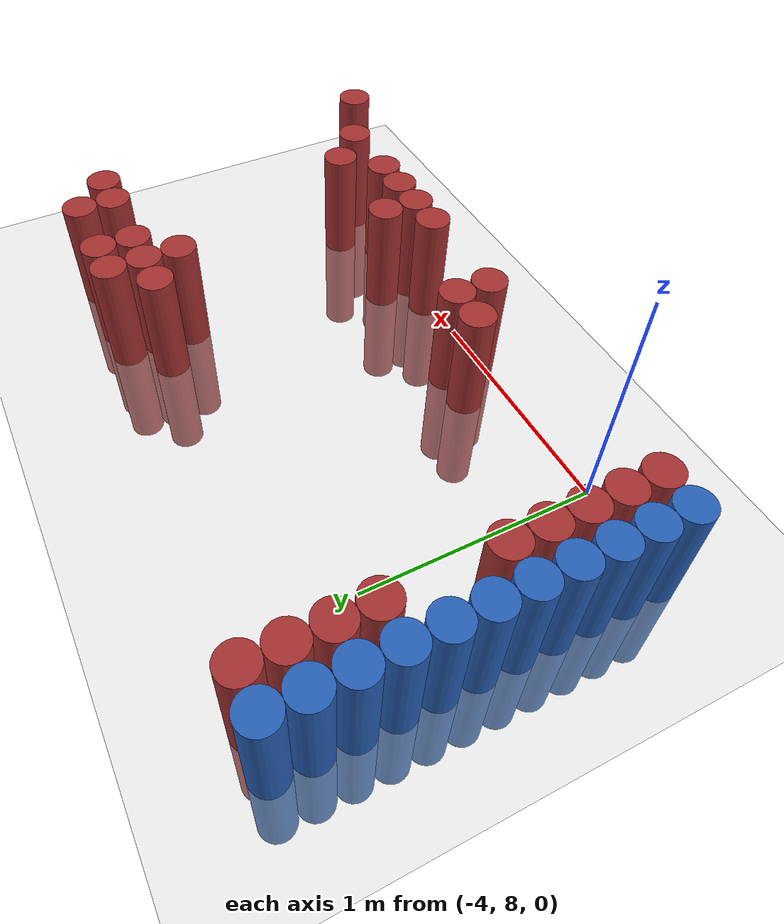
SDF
<sdf version="1.6">
 <world name="default">
  <model name="ground_plane">
   <static>1</static>
   <link name="link">
    <collision name="collision">
     <geometry><plane><normal>0 0 1</normal><size>100 100</size></plane></geometry>
     <surface><friction><ode><mu>100</mu><mu2>50</mu2></ode></friction></surface>
    </collision>
    <visual name="visual">
     <cast_shadows>0</cast_shadows>
     <geometry><plane><normal>0 0 1</normal><size>100 100</size></plane></geometry>
     <material>
      <script><uri>file://media/materials/scripts/gazebo.material</uri><name>Gazebo/Grey</name></script>
     </material>
    </visual>
   </link>
  </model>
  <model name="unit_cylinder_115">
   <static>1</static>
   <pose>-4.425000 8.025000 0.000000 0.000000 0.000000 0.000000</pose>
   <link name="link">
    <inertial>
     <mass>1</mass>
     <inertia><ixx>0.145833</ixx><ixy>0</ixy><ixz>0</ixz><iyy>0.145833</iyy><iyz>0</iyz><izz>0.125</izz></inertia>
    </inertial>
    <collision name="collision">
     <geometry><cylinder><radius>0.075000</radius><length>1</length></cylinder></geometry>
    </collision>
    <visual name="visual">
     <geometry><cylinder><radius>0.075000</radius><length>1</length></cylinder></geometry>
     <material>
      <ambient>0.152000 0.379000 0.720000 1</ambient>
      <diffuse>0.152000 0.379000 0.720000 1</diffuse>
     </material>
     <material>
      <script><name>Gazebo/Grey</name><uri>file://media/materials/scripts/gazebo.material</uri></script>
     </material>
    </visual>
    <sensor name="sensor_contact" type="contact"><contact><collision>collision</collision></contact></sensor>
   </link>
   <plugin filename="gz-sim-touchplugin-system" name="gz::sim::systems::TouchPlugin">
    <target>robot</target>
    <namespace>robot</namespace>
    <time>0.001</time>
    <enabled>true</enabled>
   </plugin>
  </model>
  <model name="unit_cylinder_116">
   <static>1</static>
   <pose>-4.425000 8.175000 0.000000 0.000000 0.000000 0.000000</pose>
   <link name="link">
    <inertial>
     <mass>1</mass>
     <inertia><ixx>0.145833</ixx><ixy>0</ixy><ixz>0</ixz><iyy>0.145833</iyy><iyz>0</iyz><izz>0.125</izz></inertia>
    </inertial>
    <collision name="collision">
     <geometry><cylinder><radius>0.075000</radius><length>1</length></cylinder></geometry>
    </collision>
    <visual name="visual">
     <geometry><cylinder><radius>0.075000</radius><length>1</length></cylinder></geometry>
     <material>
      <ambient>0.152000 0.379000 0.720000 1</ambient>
      <diffuse>0.152000 0.379000 0.720000 1</diffuse>
     </material>
     <material>
      <script><name>Gazebo/Grey</name><uri>file://media/materials/scripts/gazebo.material</uri></script>
     </material>
    </visual>
    <sensor name="sensor_contact" type="contact"><contact><collision>collision</collision></contact></sensor>
   </link>
   <plugin filename="gz-sim-touchplugin-system" name="gz::sim::systems::TouchPlugin">
    <target>robot</target>
    <namespace>robot</namespace>
    <time>0.001</time>
    <enabled>true</enabled>
   </plugin>
  </model>
  <model name="unit_cylinder_117">
   <static>1</static>
   <pose>-4.425000 8.325000 0.000000 0.000000 0.000000 0.000000</pose>
   <link name="link">
    <inertial>
     <mass>1</mass>
     <inertia><ixx>0.145833</ixx><ixy>0</ixy><ixz>0</ixz><iyy>0.145833</iyy><iyz>0</iyz><izz>0.125</izz></inertia>
    </inertial>
    <collision name="collision">
     <geometry><cylinder><radius>0.075000</radius><length>1</length></cylinder></geometry>
    </collision>
    <visual name="visual">
     <geometry><cylinder><radius>0.075000</radius><length>1</length></cylinder></geometry>
     <material>
      <ambient>0.152000 0.379000 0.720000 1</ambient>
      <diffuse>0.152000 0.379000 0.720000 1</diffuse>
     </material>
     <material>
      <script><name>Gazebo/Grey</name><uri>file://media/materials/scripts/gazebo.material</uri></script>
     </material>
    </visual>
    <sensor name="sensor_contact" type="contact"><contact><collision>collision</collision></contact></sensor>
   </link>
   <plugin filename="gz-sim-touchplugin-system" name="gz::sim::systems::TouchPlugin">
    <target>robot</target>
    <namespace>robot</namespace>
    <time>0.001</time>
    <enabled>true</enabled>
   </plugin>
  </model>
  <model name="unit_cylinder_118">
   <static>1</static>
   <pose>-4.425000 8.475000 0.000000 0.000000 0.000000 0.000000</pose>
   <link name="link">
    <inertial>
     <mass>1</mass>
     <inertia><ixx>0.145833</ixx><ixy>0</ixy><ixz>0</ixz><iyy>0.145833</iyy><iyz>0</iyz><izz>0.125</izz></inertia>
    </inertial>
    <collision name="collision">
     <geometry><cylinder><radius>0.075000</radius><length>1</length></cylinder></geometry>
    </collision>
    <visual name="visual">
     <geometry><cylinder><radius>0.075000</radius><length>1</length></cylinder></geometry>
     <material>
      <ambient>0.152000 0.379000 0.720000 1</ambient>
      <diffuse>0.152000 0.379000 0.720000 1</diffuse>
     </material>
     <material>
      <script><name>Gazebo/Grey</name><uri>file://media/materials/scripts/gazebo.material</uri></script>
     </material>
    </visual>
    <sensor name="sensor_contact" type="contact"><contact><collision>collision</collision></contact></sensor>
   </link>
   <plugin filename="gz-sim-touchplugin-system" name="gz::sim::systems::TouchPlugin">
    <target>robot</target>
    <namespace>robot</namespace>
    <time>0.001</time>
    <enabled>true</enabled>
   </plugin>
  </model>
  <model name="unit_cylinder_119">
   <static>1</static>
   <pose>-4.425000 8.625000 0.000000 0.000000 0.000000 0.000000</pose>
   <link name="link">
    <inertial>
     <mass>1</mass>
     <inertia><ixx>0.145833</ixx><ixy>0</ixy><ixz>0</ixz><iyy>0.145833</iyy><iyz>0</iyz><izz>0.125</izz></inertia>
    </inertial>
    <collision name="collision">
     <geometry><cylinder><radius>0.075000</radius><length>1</length></cylinder></geometry>
    </collision>
    <visual name="visual">
     <geometry><cylinder><radius>0.075000</radius><length>1</length></cylinder></geometry>
     <material>
      <ambient>0.152000 0.379000 0.720000 1</ambient>
      <diffuse>0.152000 0.379000 0.720000 1</diffuse>
     </material>
     <material>
      <script><name>Gazebo/Grey</name><uri>file://media/materials/scripts/gazebo.material</uri></script>
     </material>
    </visual>
    <sensor name="sensor_contact" type="contact"><contact><collision>collision</collision></contact></sensor>
   </link>
   <plugin filename="gz-sim-touchplugin-system" name="gz::sim::systems::TouchPlugin">
    <target>robot</target>
    <namespace>robot</namespace>
    <time>0.001</time>
    <enabled>true</enabled>
   </plugin>
  </model>
  <model name="unit_cylinder_120">
   <static>1</static>
   <pose>-4.425000 8.775000 0.000000 0.000000 0.000000 0.000000</pose>
   <link name="link">
    <inertial>
     <mass>1</mass>
     <inertia><ixx>0.145833</ixx><ixy>0</ixy><ixz>0</ixz><iyy>0.145833</iyy><iyz>0</iyz><izz>0.125</izz></inertia>
    </inertial>
    <collision name="collision">
     <geometry><cylinder><radius>0.075000</radius><length>1</length></cylinder></geometry>
    </collision>
    <visual name="visual">
     <geometry><cylinder><radius>0.075000</radius><length>1</length></cylinder></geometry>
     <material>
      <ambient>0.152000 0.379000 0.720000 1</ambient>
      <diffuse>0.152000 0.379000 0.720000 1</diffuse>
     </material>
     <material>
      <script><name>Gazebo/Grey</name><uri>file://media/materials/scripts/gazebo.material</uri></script>
     </material>
    </visual>
    <sensor name="sensor_contact" type="contact"><contact><collision>collision</collision></contact></sensor>
   </link>
   <plugin filename="gz-sim-touchplugin-system" name="gz::sim::systems::TouchPlugin">
    <target>robot</target>
    <namespace>robot</namespace>
    <time>0.001</time>
    <enabled>true</enabled>
   </plugin>
  </model>
  <model name="unit_cylinder_121">
   <static>1</static>
   <pose>-4.425000 8.925000 0.000000 0.000000 0.000000 0.000000</pose>
   <link name="link">
    <inertial>
     <mass>1</mass>
     <inertia><ixx>0.145833</ixx><ixy>0</ixy><ixz>0</ixz><iyy>0.145833</iyy><iyz>0</iyz><izz>0.125</izz></inertia>
    </inertial>
    <collision name="collision">
     <geometry><cylinder><radius>0.075000</radius><length>1</length></cylinder></geometry>
    </collision>
    <visual name="visual">
     <geometry><cylinder><radius>0.075000</radius><length>1</length></cylinder></geometry>
     <material>
      <ambient>0.152000 0.379000 0.720000 1</ambient>
      <diffuse>0.152000 0.379000 0.720000 1</diffuse>
     </material>
     <material>
      <script><name>Gazebo/Grey</name><uri>file://media/materials/scripts/gazebo.material</uri></script>
     </material>
    </visual>
    <sensor name="sensor_contact" type="contact"><contact><collision>collision</collision></contact></sensor>
   </link>
   <plugin filename="gz-sim-touchplugin-system" name="gz::sim::systems::TouchPlugin">
    <target>robot</target>
    <namespace>robot</namespace>
    <time>0.001</time>
    <enabled>true</enabled>
   </plugin>
  </model>
  <model name="unit_cylinder_122">
   <static>1</static>
   <pose>-4.425000 9.075000 0.000000 0.000000 0.000000 0.000000</pose>
   <link name="link">
    <inertial>
     <mass>1</mass>
     <inertia><ixx>0.145833</ixx><ixy>0</ixy><ixz>0</ixz><iyy>0.145833</iyy><iyz>0</iyz><izz>0.125</izz></inertia>
    </inertial>
    <collision name="collision">
     <geometry><cylinder><radius>0.075000</radius><length>1</length></cylinder></geometry>
    </collision>
    <visual name="visual">
     <geometry><cylinder><radius>0.075000</radius><length>1</length></cylinder></geometry>
     <material>
      <ambient>0.152000 0.379000 0.720000 1</ambient>
      <diffuse>0.152000 0.379000 0.720000 1</diffuse>
     </material>
     <material>
      <script><name>Gazebo/Grey</name><uri>file://media/materials/scripts/gazebo.material</uri></script>
     </material>
    </visual>
    <sensor name="sensor_contact" type="contact"><contact><collision>collision</collision></contact></sensor>
   </link>
   <plugin filename="gz-sim-touchplugin-system" name="gz::sim::systems::TouchPlugin">
    <target>robot</target>
    <namespace>robot</namespace>
    <time>0.001</time>
    <enabled>true</enabled>
   </plugin>
  </model>
  <model name="unit_cylinder_123">
   <static>1</static>
   <pose>-4.425000 9.225000 0.000000 0.000000 0.000000 0.000000</pose>
   <link name="link">
    <inertial>
     <mass>1</mass>
     <inertia><ixx>0.145833</ixx><ixy>0</ixy><ixz>0</ixz><iyy>0.145833</iyy><iyz>0</iyz><izz>0.125</izz></inertia>
    </inertial>
    <collision name="collision">
     <geometry><cylinder><radius>0.075000</radius><length>1</length></cylinder></geometry>
    </collision>
    <visual name="visual">
     <geometry><cylinder><radius>0.075000</radius><length>1</length></cylinder></geometry>
     <material>
      <ambient>0.152000 0.379000 0.720000 1</ambient>
      <diffuse>0.152000 0.379000 0.720000 1</diffuse>
     </material>
     <material>
      <script><name>Gazebo/Grey</name><uri>file://media/materials/scripts/gazebo.material</uri></script>
     </material>
    </visual>
    <sensor name="sensor_contact" type="contact"><contact><collision>collision</collision></contact></sensor>
   </link>
   <plugin filename="gz-sim-touchplugin-system" name="gz::sim::systems::TouchPlugin">
    <target>robot</target>
    <namespace>robot</namespace>
    <time>0.001</time>
    <enabled>true</enabled>
   </plugin>
  </model>
  <model name="unit_cylinder_124">
   <static>1</static>
   <pose>-4.425000 9.375000 0.000000 0.000000 0.000000 0.000000</pose>
   <link name="link">
    <inertial>
     <mass>1</mass>
     <inertia><ixx>0.145833</ixx><ixy>0</ixy><ixz>0</ixz><iyy>0.145833</iyy><iyz>0</iyz><izz>0.125</izz></inertia>
    </inertial>
    <collision name="collision">
     <geometry><cylinder><radius>0.075000</radius><length>1</length></cylinder></geometry>
    </collision>
    <visual name="visual">
     <geometry><cylinder><radius>0.075000</radius><length>1</length></cylinder></geometry>
     <material>
      <ambient>0.152000 0.379000 0.720000 1</ambient>
      <diffuse>0.152000 0.379000 0.720000 1</diffuse>
     </material>
     <material>
      <script><name>Gazebo/Grey</name><uri>file://media/materials/scripts/gazebo.material</uri></script>
     </material>
    </visual>
    <sensor name="sensor_contact" type="contact"><contact><collision>collision</collision></contact></sensor>
   </link>
   <plugin filename="gz-sim-touchplugin-system" name="gz::sim::systems::TouchPlugin">
    <target>robot</target>
    <namespace>robot</namespace>
    <time>0.001</time>
    <enabled>true</enabled>
   </plugin>
  </model>
  <model name="unit_cylinder_125">
   <static>1</static>
   <pose>-4.425000 9.525000 0.000000 0.000000 0.000000 0.000000</pose>
   <link name="link">
    <inertial>
     <mass>1</mass>
     <inertia><ixx>0.145833</ixx><ixy>0</ixy><ixz>0</ixz><iyy>0.145833</iyy><iyz>0</iyz><izz>0.125</izz></inertia>
    </inertial>
    <collision name="collision">
     <geometry><cylinder><radius>0.075000</radius><length>1</length></cylinder></geometry>
    </collision>
    <visual name="visual">
     <geometry><cylinder><radius>0.075000</radius><length>1</length></cylinder></geometry>
     <material>
      <ambient>0.152000 0.379000 0.720000 1</ambient>
      <diffuse>0.152000 0.379000 0.720000 1</diffuse>
     </material>
     <material>
      <script><name>Gazebo/Grey</name><uri>file://media/materials/scripts/gazebo.material</uri></script>
     </material>
    </visual>
    <sensor name="sensor_contact" type="contact"><contact><collision>collision</collision></contact></sensor>
   </link>
   <plugin filename="gz-sim-touchplugin-system" name="gz::sim::systems::TouchPlugin">
    <target>robot</target>
    <namespace>robot</namespace>
    <time>0.001</time>
    <enabled>true</enabled>
   </plugin>
  </model>
  <model name="unit_cylinder_133">
   <static>1</static>
   <pose>-4.275000 8.025000 0.000000 0.000000 0.000000 0.000000</pose>
   <link name="link">
    <inertial>
     <mass>1</mass>
     <inertia><ixx>0.145833</ixx><ixy>0</ixy><ixz>0</ixz><iyy>0.145833</iyy><iyz>0</iyz><izz>0.125</izz></inertia>
    </inertial>
    <collision name="collision">
     <geometry><cylinder><radius>0.075000</radius><length>1</length></cylinder></geometry>
    </collision>
    <visual name="visual">
     <geometry><cylinder><radius>0.075000</radius><length>1</length></cylinder></geometry>
     <material>
      <ambient>0.648000 0.192000 0.192000 1</ambient>
      <diffuse>0.648000 0.192000 0.192000 1</diffuse>
     </material>
     <material>
      <script><name>Gazebo/Grey</name><uri>file://media/materials/scripts/gazebo.material</uri></script>
     </material>
    </visual>
    <sensor name="sensor_contact" type="contact"><contact><collision>collision</collision></contact></sensor>
   </link>
   <plugin filename="gz-sim-touchplugin-system" name="gz::sim::systems::TouchPlugin">
    <target>robot</target>
    <namespace>robot</namespace>
    <time>0.001</time>
    <enabled>true</enabled>
   </plugin>
  </model>
  <model name="unit_cylinder_134">
   <static>1</static>
   <pose>-4.275000 8.175000 0.000000 0.000000 0.000000 0.000000</pose>
   <link name="link">
    <inertial>
     <mass>1</mass>
     <inertia><ixx>0.145833</ixx><ixy>0</ixy><ixz>0</ixz><iyy>0.145833</iyy><iyz>0</iyz><izz>0.125</izz></inertia>
    </inertial>
    <collision name="collision">
     <geometry><cylinder><radius>0.075000</radius><length>1</length></cylinder></geometry>
    </collision>
    <visual name="visual">
     <geometry><cylinder><radius>0.075000</radius><length>1</length></cylinder></geometry>
     <material>
      <ambient>0.648000 0.192000 0.192000 1</ambient>
      <diffuse>0.648000 0.192000 0.192000 1</diffuse>
     </material>
     <material>
      <script><name>Gazebo/Grey</name><uri>file://media/materials/scripts/gazebo.material</uri></script>
     </material>
    </visual>
    <sensor name="sensor_contact" type="contact"><contact><collision>collision</collision></contact></sensor>
   </link>
   <plugin filename="gz-sim-touchplugin-system" name="gz::sim::systems::TouchPlugin">
    <target>robot</target>
    <namespace>robot</namespace>
    <time>0.001</time>
    <enabled>true</enabled>
   </plugin>
  </model>
  <model name="unit_cylinder_135">
   <static>1</static>
   <pose>-4.275000 8.325000 0.000000 0.000000 0.000000 0.000000</pose>
   <link name="link">
    <inertial>
     <mass>1</mass>
     <inertia><ixx>0.145833</ixx><ixy>0</ixy><ixz>0</ixz><iyy>0.145833</iyy><iyz>0</iyz><izz>0.125</izz></inertia>
    </inertial>
    <collision name="collision">
     <geometry><cylinder><radius>0.075000</radius><length>1</length></cylinder></geometry>
    </collision>
    <visual name="visual">
     <geometry><cylinder><radius>0.075000</radius><length>1</length></cylinder></geometry>
     <material>
      <ambient>0.648000 0.192000 0.192000 1</ambient>
      <diffuse>0.648000 0.192000 0.192000 1</diffuse>
     </material>
     <material>
      <script><name>Gazebo/Grey</name><uri>file://media/materials/scripts/gazebo.material</uri></script>
     </material>
    </visual>
    <sensor name="sensor_contact" type="contact"><contact><collision>collision</collision></contact></sensor>
   </link>
   <plugin filename="gz-sim-touchplugin-system" name="gz::sim::systems::TouchPlugin">
    <target>robot</target>
    <namespace>robot</namespace>
    <time>0.001</time>
    <enabled>true</enabled>
   </plugin>
  </model>
  <model name="unit_cylinder_136">
   <static>1</static>
   <pose>-4.275000 8.475000 0.000000 0.000000 0.000000 0.000000</pose>
   <link name="link">
    <inertial>
     <mass>1</mass>
     <inertia><ixx>0.145833</ixx><ixy>0</ixy><ixz>0</ixz><iyy>0.145833</iyy><iyz>0</iyz><izz>0.125</izz></inertia>
    </inertial>
    <collision name="collision">
     <geometry><cylinder><radius>0.075000</radius><length>1</length></cylinder></geometry>
    </collision>
    <visual name="visual">
     <geometry><cylinder><radius>0.075000</radius><length>1</length></cylinder></geometry>
     <material>
      <ambient>0.648000 0.192000 0.192000 1</ambient>
      <diffuse>0.648000 0.192000 0.192000 1</diffuse>
     </material>
     <material>
      <script><name>Gazebo/Grey</name><uri>file://media/materials/scripts/gazebo.material</uri></script>
     </material>
    </visual>
    <sensor name="sensor_contact" type="contact"><contact><collision>collision</collision></contact></sensor>
   </link>
   <plugin filename="gz-sim-touchplugin-system" name="gz::sim::systems::TouchPlugin">
    <target>robot</target>
    <namespace>robot</namespace>
    <time>0.001</time>
    <enabled>true</enabled>
   </plugin>
  </model>
  <model name="unit_cylinder_137">
   <static>1</static>
   <pose>-4.275000 8.625000 0.000000 0.000000 0.000000 0.000000</pose>
   <link name="link">
    <inertial>
     <mass>1</mass>
     <inertia><ixx>0.145833</ixx><ixy>0</ixy><ixz>0</ixz><iyy>0.145833</iyy><iyz>0</iyz><izz>0.125</izz></inertia>
    </inertial>
    <collision name="collision">
     <geometry><cylinder><radius>0.075000</radius><length>1</length></cylinder></geometry>
    </collision>
    <visual name="visual">
     <geometry><cylinder><radius>0.075000</radius><length>1</length></cylinder></geometry>
     <material>
      <ambient>0.648000 0.192000 0.192000 1</ambient>
      <diffuse>0.648000 0.192000 0.192000 1</diffuse>
     </material>
     <material>
      <script><name>Gazebo/Grey</name><uri>file://media/materials/scripts/gazebo.material</uri></script>
     </material>
    </visual>
    <sensor name="sensor_contact" type="contact"><contact><collision>collision</collision></contact></sensor>
   </link>
   <plugin filename="gz-sim-touchplugin-system" name="gz::sim::systems::TouchPlugin">
    <target>robot</target>
    <namespace>robot</namespace>
    <time>0.001</time>
    <enabled>true</enabled>
   </plugin>
  </model>
  <model name="unit_cylinder_138">
   <static>1</static>
   <pose>-4.275000 9.075000 0.000000 0.000000 0.000000 0.000000</pose>
   <link name="link">
    <inertial>
     <mass>1</mass>
     <inertia><ixx>0.145833</ixx><ixy>0</ixy><ixz>0</ixz><iyy>0.145833</iyy><iyz>0</iyz><izz>0.125</izz></inertia>
    </inertial>
    <collision name="collision">
     <geometry><cylinder><radius>0.075000</radius><length>1</length></cylinder></geometry>
    </collision>
    <visual name="visual">
     <geometry><cylinder><radius>0.075000</radius><length>1</length></cylinder></geometry>
     <material>
      <ambient>0.648000 0.192000 0.192000 1</ambient>
      <diffuse>0.648000 0.192000 0.192000 1</diffuse>
     </material>
     <material>
      <script><name>Gazebo/Grey</name><uri>file://media/materials/scripts/gazebo.material</uri></script>
     </material>
    </visual>
    <sensor name="sensor_contact" type="contact"><contact><collision>collision</collision></contact></sensor>
   </link>
   <plugin filename="gz-sim-touchplugin-system" name="gz::sim::systems::TouchPlugin">
    <target>robot</target>
    <namespace>robot</namespace>
    <time>0.001</time>
    <enabled>true</enabled>
   </plugin>
  </model>
  <model name="unit_cylinder_139">
   <static>1</static>
   <pose>-4.275000 9.225000 0.000000 0.000000 0.000000 0.000000</pose>
   <link name="link">
    <inertial>
     <mass>1</mass>
     <inertia><ixx>0.145833</ixx><ixy>0</ixy><ixz>0</ixz><iyy>0.145833</iyy><iyz>0</iyz><izz>0.125</izz></inertia>
    </inertial>
    <collision name="collision">
     <geometry><cylinder><radius>0.075000</radius><length>1</length></cylinder></geometry>
    </collision>
    <visual name="visual">
     <geometry><cylinder><radius>0.075000</radius><length>1</length></cylinder></geometry>
     <material>
      <ambient>0.648000 0.192000 0.192000 1</ambient>
      <diffuse>0.648000 0.192000 0.192000 1</diffuse>
     </material>
     <material>
      <script><name>Gazebo/Grey</name><uri>file://media/materials/scripts/gazebo.material</uri></script>
     </material>
    </visual>
    <sensor name="sensor_contact" type="contact"><contact><collision>collision</collision></contact></sensor>
   </link>
   <plugin filename="gz-sim-touchplugin-system" name="gz::sim::systems::TouchPlugin">
    <target>robot</target>
    <namespace>robot</namespace>
    <time>0.001</time>
    <enabled>true</enabled>
   </plugin>
  </model>
  <model name="unit_cylinder_140">
   <static>1</static>
   <pose>-4.275000 9.375000 0.000000 0.000000 0.000000 0.000000</pose>
   <link name="link">
    <inertial>
     <mass>1</mass>
     <inertia><ixx>0.145833</ixx><ixy>0</ixy><ixz>0</ixz><iyy>0.145833</iyy><iyz>0</iyz><izz>0.125</izz></inertia>
    </inertial>
    <collision name="collision">
     <geometry><cylinder><radius>0.075000</radius><length>1</length></cylinder></geometry>
    </collision>
    <visual name="visual">
     <geometry><cylinder><radius>0.075000</radius><length>1</length></cylinder></geometry>
     <material>
      <ambient>0.648000 0.192000 0.192000 1</ambient>
      <diffuse>0.648000 0.192000 0.192000 1</diffuse>
     </material>
     <material>
      <script><name>Gazebo/Grey</name><uri>file://media/materials/scripts/gazebo.material</uri></script>
     </material>
    </visual>
    <sensor name="sensor_contact" type="contact"><contact><collision>collision</collision></contact></sensor>
   </link>
   <plugin filename="gz-sim-touchplugin-system" name="gz::sim::systems::TouchPlugin">
    <target>robot</target>
    <namespace>robot</namespace>
    <time>0.001</time>
    <enabled>true</enabled>
   </plugin>
  </model>
  <model name="unit_cylinder_141">
   <static>1</static>
   <pose>-4.275000 9.525000 0.000000 0.000000 0.000000 0.000000</pose>
   <link name="link">
    <inertial>
     <mass>1</mass>
     <inertia><ixx>0.145833</ixx><ixy>0</ixy><ixz>0</ixz><iyy>0.145833</iyy><iyz>0</iyz><izz>0.125</izz></inertia>
    </inertial>
    <collision name="collision">
     <geometry><cylinder><radius>0.075000</radius><length>1</length></cylinder></geometry>
    </collision>
    <visual name="visual">
     <geometry><cylinder><radius>0.075000</radius><length>1</length></cylinder></geometry>
     <material>
      <ambient>0.648000 0.192000 0.192000 1</ambient>
      <diffuse>0.648000 0.192000 0.192000 1</diffuse>
     </material>
     <material>
      <script><name>Gazebo/Grey</name><uri>file://media/materials/scripts/gazebo.material</uri></script>
     </material>
    </visual>
    <sensor name="sensor_contact" type="contact"><contact><collision>collision</collision></contact></sensor>
   </link>
   <plugin filename="gz-sim-touchplugin-system" name="gz::sim::systems::TouchPlugin">
    <target>robot</target>
    <namespace>robot</namespace>
    <time>0.001</time>
    <enabled>true</enabled>
   </plugin>
  </model>
  <model name="unit_cylinder_159">
   <static>1</static>
   <pose>-3.375000 8.175000 0.000000 0.000000 0.000000 0.000000</pose>
   <link name="link">
    <inertial>
     <mass>1</mass>
     <inertia><ixx>0.145833</ixx><ixy>0</ixy><ixz>0</ixz><iyy>0.145833</iyy><iyz>0</iyz><izz>0.125</izz></inertia>
    </inertial>
    <collision name="collision">
     <geometry><cylinder><radius>0.075000</radius><length>1</length></cylinder></geometry>
    </collision>
    <visual name="visual">
     <geometry><cylinder><radius>0.075000</radius><length>1</length></cylinder></geometry>
     <material>
      <ambient>0.648000 0.192000 0.192000 1</ambient>
      <diffuse>0.648000 0.192000 0.192000 1</diffuse>
     </material>
     <material>
      <script><name>Gazebo/Grey</name><uri>file://media/materials/scripts/gazebo.material</uri></script>
     </material>
    </visual>
    <sensor name="sensor_contact" type="contact"><contact><collision>collision</collision></contact></sensor>
   </link>
   <plugin filename="gz-sim-touchplugin-system" name="gz::sim::systems::TouchPlugin">
    <target>robot</target>
    <namespace>robot</namespace>
    <time>0.001</time>
    <enabled>true</enabled>
   </plugin>
  </model>
  <model name="unit_cylinder_160">
   <static>1</static>
   <pose>-3.225000 8.025000 0.000000 0.000000 0.000000 0.000000</pose>
   <link name="link">
    <inertial>
     <mass>1</mass>
     <inertia><ixx>0.145833</ixx><ixy>0</ixy><ixz>0</ixz><iyy>0.145833</iyy><iyz>0</iyz><izz>0.125</izz></inertia>
    </inertial>
    <collision name="collision">
     <geometry><cylinder><radius>0.075000</radius><length>1</length></cylinder></geometry>
    </collision>
    <visual name="visual">
     <geometry><cylinder><radius>0.075000</radius><length>1</length></cylinder></geometry>
     <material>
      <ambient>0.648000 0.192000 0.192000 1</ambient>
      <diffuse>0.648000 0.192000 0.192000 1</diffuse>
     </material>
     <material>
      <script><name>Gazebo/Grey</name><uri>file://media/materials/scripts/gazebo.material</uri></script>
     </material>
    </visual>
    <sensor name="sensor_contact" type="contact"><contact><collision>collision</collision></contact></sensor>
   </link>
   <plugin filename="gz-sim-touchplugin-system" name="gz::sim::systems::TouchPlugin">
    <target>robot</target>
    <namespace>robot</namespace>
    <time>0.001</time>
    <enabled>true</enabled>
   </plugin>
  </model>
  <model name="unit_cylinder_161">
   <static>1</static>
   <pose>-3.225000 8.175000 0.000000 0.000000 0.000000 0.000000</pose>
   <link name="link">
    <inertial>
     <mass>1</mass>
     <inertia><ixx>0.145833</ixx><ixy>0</ixy><ixz>0</ixz><iyy>0.145833</iyy><iyz>0</iyz><izz>0.125</izz></inertia>
    </inertial>
    <collision name="collision">
     <geometry><cylinder><radius>0.075000</radius><length>1</length></cylinder></geometry>
    </collision>
    <visual name="visual">
     <geometry><cylinder><radius>0.075000</radius><length>1</length></cylinder></geometry>
     <material>
      <ambient>0.648000 0.192000 0.192000 1</ambient>
      <diffuse>0.648000 0.192000 0.192000 1</diffuse>
     </material>
     <material>
      <script><name>Gazebo/Grey</name><uri>file://media/materials/scripts/gazebo.material</uri></script>
     </material>
    </visual>
    <sensor name="sensor_contact" type="contact"><contact><collision>collision</collision></contact></sensor>
   </link>
   <plugin filename="gz-sim-touchplugin-system" name="gz::sim::systems::TouchPlugin">
    <target>robot</target>
    <namespace>robot</namespace>
    <time>0.001</time>
    <enabled>true</enabled>
   </plugin>
  </model>
  <model name="unit_cylinder_164">
   <static>1</static>
   <pose>-2.775000 8.025000 0.000000 0.000000 0.000000 0.000000</pose>
   <link name="link">
    <inertial>
     <mass>1</mass>
     <inertia><ixx>0.145833</ixx><ixy>0</ixy><ixz>0</ixz><iyy>0.145833</iyy><iyz>0</iyz><izz>0.125</izz></inertia>
    </inertial>
    <collision name="collision">
     <geometry><cylinder><radius>0.075000</radius><length>1</length></cylinder></geometry>
    </collision>
    <visual name="visual">
     <geometry><cylinder><radius>0.075000</radius><length>1</length></cylinder></geometry>
     <material>
      <ambient>0.648000 0.192000 0.192000 1</ambient>
      <diffuse>0.648000 0.192000 0.192000 1</diffuse>
     </material>
     <material>
      <script><name>Gazebo/Grey</name><uri>file://media/materials/scripts/gazebo.material</uri></script>
     </material>
    </visual>
    <sensor name="sensor_contact" type="contact"><contact><collision>collision</collision></contact></sensor>
   </link>
   <plugin filename="gz-sim-touchplugin-system" name="gz::sim::systems::TouchPlugin">
    <target>robot</target>
    <namespace>robot</namespace>
    <time>0.001</time>
    <enabled>true</enabled>
   </plugin>
  </model>
  <model name="unit_cylinder_166">
   <static>1</static>
   <pose>-2.625000 8.025000 0.000000 0.000000 0.000000 0.000000</pose>
   <link name="link">
    <inertial>
     <mass>1</mass>
     <inertia><ixx>0.145833</ixx><ixy>0</ixy><ixz>0</ixz><iyy>0.145833</iyy><iyz>0</iyz><izz>0.125</izz></inertia>
    </inertial>
    <collision name="collision">
     <geometry><cylinder><radius>0.075000</radius><length>1</length></cylinder></geometry>
    </collision>
    <visual name="visual">
     <geometry><cylinder><radius>0.075000</radius><length>1</length></cylinder></geometry>
     <material>
      <ambient>0.648000 0.192000 0.192000 1</ambient>
      <diffuse>0.648000 0.192000 0.192000 1</diffuse>
     </material>
     <material>
      <script><name>Gazebo/Grey</name><uri>file://media/materials/scripts/gazebo.material</uri></script>
     </material>
    </visual>
    <sensor name="sensor_contact" type="contact"><contact><collision>collision</collision></contact></sensor>
   </link>
   <plugin filename="gz-sim-touchplugin-system" name="gz::sim::systems::TouchPlugin">
    <target>robot</target>
    <namespace>robot</namespace>
    <time>0.001</time>
    <enabled>true</enabled>
   </plugin>
  </model>
  <model name="unit_cylinder_167">
   <static>1</static>
   <pose>-2.625000 8.175000 0.000000 0.000000 0.000000 0.000000</pose>
   <link name="link">
    <inertial>
     <mass>1</mass>
     <inertia><ixx>0.145833</ixx><ixy>0</ixy><ixz>0</ixz><iyy>0.145833</iyy><iyz>0</iyz><izz>0.125</izz></inertia>
    </inertial>
    <collision name="collision">
     <geometry><cylinder><radius>0.075000</radius><length>1</length></cylinder></geometry>
    </collision>
    <visual name="visual">
     <geometry><cylinder><radius>0.075000</radius><length>1</length></cylinder></geometry>
     <material>
      <ambient>0.648000 0.192000 0.192000 1</ambient>
      <diffuse>0.648000 0.192000 0.192000 1</diffuse>
     </material>
     <material>
      <script><name>Gazebo/Grey</name><uri>file://media/materials/scripts/gazebo.material</uri></script>
     </material>
    </visual>
    <sensor name="sensor_contact" type="contact"><contact><collision>collision</collision></contact></sensor>
   </link>
   <plugin filename="gz-sim-touchplugin-system" name="gz::sim::systems::TouchPlugin">
    <target>robot</target>
    <namespace>robot</namespace>
    <time>0.001</time>
    <enabled>true</enabled>
   </plugin>
  </model>
  <model name="unit_cylinder_168">
   <static>1</static>
   <pose>-2.625000 9.225000 0.000000 0.000000 0.000000 0.000000</pose>
   <link name="link">
    <inertial>
     <mass>1</mass>
     <inertia><ixx>0.145833</ixx><ixy>0</ixy><ixz>0</ixz><iyy>0.145833</iyy><iyz>0</iyz><izz>0.125</izz></inertia>
    </inertial>
    <collision name="collision">
     <geometry><cylinder><radius>0.075000</radius><length>1</length></cylinder></geometry>
    </collision>
    <visual name="visual">
     <geometry><cylinder><radius>0.075000</radius><length>1</length></cylinder></geometry>
     <material>
      <ambient>0.648000 0.192000 0.192000 1</ambient>
      <diffuse>0.648000 0.192000 0.192000 1</diffuse>
     </material>
     <material>
      <script><name>Gazebo/Grey</name><uri>file://media/materials/scripts/gazebo.material</uri></script>
     </material>
    </visual>
    <sensor name="sensor_contact" type="contact"><contact><collision>collision</collision></contact></sensor>
   </link>
   <plugin filename="gz-sim-touchplugin-system" name="gz::sim::systems::TouchPlugin">
    <target>robot</target>
    <namespace>robot</namespace>
    <time>0.001</time>
    <enabled>true</enabled>
   </plugin>
  </model>
  <model name="unit_cylinder_171">
   <static>1</static>
   <pose>-2.475000 8.025000 0.000000 0.000000 0.000000 0.000000</pose>
   <link name="link">
    <inertial>
     <mass>1</mass>
     <inertia><ixx>0.145833</ixx><ixy>0</ixy><ixz>0</ixz><iyy>0.145833</iyy><iyz>0</iyz><izz>0.125</izz></inertia>
    </inertial>
    <collision name="collision">
     <geometry><cylinder><radius>0.075000</radius><length>1</length></cylinder></geometry>
    </collision>
    <visual name="visual">
     <geometry><cylinder><radius>0.075000</radius><length>1</length></cylinder></geometry>
     <material>
      <ambient>0.648000 0.192000 0.192000 1</ambient>
      <diffuse>0.648000 0.192000 0.192000 1</diffuse>
     </material>
     <material>
      <script><name>Gazebo/Grey</name><uri>file://media/materials/scripts/gazebo.material</uri></script>
     </material>
    </visual>
    <sensor name="sensor_contact" type="contact"><contact><collision>collision</collision></contact></sensor>
   </link>
   <plugin filename="gz-sim-touchplugin-system" name="gz::sim::systems::TouchPlugin">
    <target>robot</target>
    <namespace>robot</namespace>
    <time>0.001</time>
    <enabled>true</enabled>
   </plugin>
  </model>
  <model name="unit_cylinder_172">
   <static>1</static>
   <pose>-2.475000 9.075000 0.000000 0.000000 0.000000 0.000000</pose>
   <link name="link">
    <inertial>
     <mass>1</mass>
     <inertia><ixx>0.145833</ixx><ixy>0</ixy><ixz>0</ixz><iyy>0.145833</iyy><iyz>0</iyz><izz>0.125</izz></inertia>
    </inertial>
    <collision name="collision">
     <geometry><cylinder><radius>0.075000</radius><length>1</length></cylinder></geometry>
    </collision>
    <visual name="visual">
     <geometry><cylinder><radius>0.075000</radius><length>1</length></cylinder></geometry>
     <material>
      <ambient>0.648000 0.192000 0.192000 1</ambient>
      <diffuse>0.648000 0.192000 0.192000 1</diffuse>
     </material>
     <material>
      <script><name>Gazebo/Grey</name><uri>file://media/materials/scripts/gazebo.material</uri></script>
     </material>
    </visual>
    <sensor name="sensor_contact" type="contact"><contact><collision>collision</collision></contact></sensor>
   </link>
   <plugin filename="gz-sim-touchplugin-system" name="gz::sim::systems::TouchPlugin">
    <target>robot</target>
    <namespace>robot</namespace>
    <time>0.001</time>
    <enabled>true</enabled>
   </plugin>
  </model>
  <model name="unit_cylinder_173">
   <static>1</static>
   <pose>-2.475000 9.225000 0.000000 0.000000 0.000000 0.000000</pose>
   <link name="link">
    <inertial>
     <mass>1</mass>
     <inertia><ixx>0.145833</ixx><ixy>0</ixy><ixz>0</ixz><iyy>0.145833</iyy><iyz>0</iyz><izz>0.125</izz></inertia>
    </inertial>
    <collision name="collision">
     <geometry><cylinder><radius>0.075000</radius><length>1</length></cylinder></geometry>
    </collision>
    <visual name="visual">
     <geometry><cylinder><radius>0.075000</radius><length>1</length></cylinder></geometry>
     <material>
      <ambient>0.648000 0.192000 0.192000 1</ambient>
      <diffuse>0.648000 0.192000 0.192000 1</diffuse>
     </material>
     <material>
      <script><name>Gazebo/Grey</name><uri>file://media/materials/scripts/gazebo.material</uri></script>
     </material>
    </visual>
    <sensor name="sensor_contact" type="contact"><contact><collision>collision</collision></contact></sensor>
   </link>
   <plugin filename="gz-sim-touchplugin-system" name="gz::sim::systems::TouchPlugin">
    <target>robot</target>
    <namespace>robot</namespace>
    <time>0.001</time>
    <enabled>true</enabled>
   </plugin>
  </model>
  <model name="unit_cylinder_174">
   <static>1</static>
   <pose>-2.475000 9.375000 0.000000 0.000000 0.000000 0.000000</pose>
   <link name="link">
    <inertial>
     <mass>1</mass>
     <inertia><ixx>0.145833</ixx><ixy>0</ixy><ixz>0</ixz><iyy>0.145833</iyy><iyz>0</iyz><izz>0.125</izz></inertia>
    </inertial>
    <collision name="collision">
     <geometry><cylinder><radius>0.075000</radius><length>1</length></cylinder></geometry>
    </collision>
    <visual name="visual">
     <geometry><cylinder><radius>0.075000</radius><length>1</length></cylinder></geometry>
     <material>
      <ambient>0.648000 0.192000 0.192000 1</ambient>
      <diffuse>0.648000 0.192000 0.192000 1</diffuse>
     </material>
     <material>
      <script><name>Gazebo/Grey</name><uri>file://media/materials/scripts/gazebo.material</uri></script>
     </material>
    </visual>
    <sensor name="sensor_contact" type="contact"><contact><collision>collision</collision></contact></sensor>
   </link>
   <plugin filename="gz-sim-touchplugin-system" name="gz::sim::systems::TouchPlugin">
    <target>robot</target>
    <namespace>robot</namespace>
    <time>0.001</time>
    <enabled>true</enabled>
   </plugin>
  </model>
  <model name="unit_cylinder_180">
   <static>1</static>
   <pose>-2.325000 8.025000 0.000000 0.000000 0.000000 0.000000</pose>
   <link name="link">
    <inertial>
     <mass>1</mass>
     <inertia><ixx>0.145833</ixx><ixy>0</ixy><ixz>0</ixz><iyy>0.145833</iyy><iyz>0</iyz><izz>0.125</izz></inertia>
    </inertial>
    <collision name="collision">
     <geometry><cylinder><radius>0.075000</radius><length>1</length></cylinder></geometry>
    </collision>
    <visual name="visual">
     <geometry><cylinder><radius>0.075000</radius><length>1</length></cylinder></geometry>
     <material>
      <ambient>0.648000 0.192000 0.192000 1</ambient>
      <diffuse>0.648000 0.192000 0.192000 1</diffuse>
     </material>
     <material>
      <script><name>Gazebo/Grey</name><uri>file://media/materials/scripts/gazebo.material</uri></script>
     </material>
    </visual>
    <sensor name="sensor_contact" type="contact"><contact><collision>collision</collision></contact></sensor>
   </link>
   <plugin filename="gz-sim-touchplugin-system" name="gz::sim::systems::TouchPlugin">
    <target>robot</target>
    <namespace>robot</namespace>
    <time>0.001</time>
    <enabled>true</enabled>
   </plugin>
  </model>
  <model name="unit_cylinder_181">
   <static>1</static>
   <pose>-2.325000 9.225000 0.000000 0.000000 0.000000 0.000000</pose>
   <link name="link">
    <inertial>
     <mass>1</mass>
     <inertia><ixx>0.145833</ixx><ixy>0</ixy><ixz>0</ixz><iyy>0.145833</iyy><iyz>0</iyz><izz>0.125</izz></inertia>
    </inertial>
    <collision name="collision">
     <geometry><cylinder><radius>0.075000</radius><length>1</length></cylinder></geometry>
    </collision>
    <visual name="visual">
     <geometry><cylinder><radius>0.075000</radius><length>1</length></cylinder></geometry>
     <material>
      <ambient>0.648000 0.192000 0.192000 1</ambient>
      <diffuse>0.648000 0.192000 0.192000 1</diffuse>
     </material>
     <material>
      <script><name>Gazebo/Grey</name><uri>file://media/materials/scripts/gazebo.material</uri></script>
     </material>
    </visual>
    <sensor name="sensor_contact" type="contact"><contact><collision>collision</collision></contact></sensor>
   </link>
   <plugin filename="gz-sim-touchplugin-system" name="gz::sim::systems::TouchPlugin">
    <target>robot</target>
    <namespace>robot</namespace>
    <time>0.001</time>
    <enabled>true</enabled>
   </plugin>
  </model>
  <model name="unit_cylinder_182">
   <static>1</static>
   <pose>-2.325000 9.375000 0.000000 0.000000 0.000000 0.000000</pose>
   <link name="link">
    <inertial>
     <mass>1</mass>
     <inertia><ixx>0.145833</ixx><ixy>0</ixy><ixz>0</ixz><iyy>0.145833</iyy><iyz>0</iyz><izz>0.125</izz></inertia>
    </inertial>
    <collision name="collision">
     <geometry><cylinder><radius>0.075000</radius><length>1</length></cylinder></geometry>
    </collision>
    <visual name="visual">
     <geometry><cylinder><radius>0.075000</radius><length>1</length></cylinder></geometry>
     <material>
      <ambient>0.648000 0.192000 0.192000 1</ambient>
      <diffuse>0.648000 0.192000 0.192000 1</diffuse>
     </material>
     <material>
      <script><name>Gazebo/Grey</name><uri>file://media/materials/scripts/gazebo.material</uri></script>
     </material>
    </visual>
    <sensor name="sensor_contact" type="contact"><contact><collision>collision</collision></contact></sensor>
   </link>
   <plugin filename="gz-sim-touchplugin-system" name="gz::sim::systems::TouchPlugin">
    <target>robot</target>
    <namespace>robot</namespace>
    <time>0.001</time>
    <enabled>true</enabled>
   </plugin>
  </model>
  <model name="unit_cylinder_192">
   <static>1</static>
   <pose>-2.175000 8.175000 0.000000 0.000000 0.000000 0.000000</pose>
   <link name="link">
    <inertial>
     <mass>1</mass>
     <inertia><ixx>0.145833</ixx><ixy>0</ixy><ixz>0</ixz><iyy>0.145833</iyy><iyz>0</iyz><izz>0.125</izz></inertia>
    </inertial>
    <collision name="collision">
     <geometry><cylinder><radius>0.075000</radius><length>1</length></cylinder></geometry>
    </collision>
    <visual name="visual">
     <geometry><cylinder><radius>0.075000</radius><length>1</length></cylinder></geometry>
     <material>
      <ambient>0.648000 0.192000 0.192000 1</ambient>
      <diffuse>0.648000 0.192000 0.192000 1</diffuse>
     </material>
     <material>
      <script><name>Gazebo/Grey</name><uri>file://media/materials/scripts/gazebo.material</uri></script>
     </material>
    </visual>
    <sensor name="sensor_contact" type="contact"><contact><collision>collision</collision></contact></sensor>
   </link>
   <plugin filename="gz-sim-touchplugin-system" name="gz::sim::systems::TouchPlugin">
    <target>robot</target>
    <namespace>robot</namespace>
    <time>0.001</time>
    <enabled>true</enabled>
   </plugin>
  </model>
  <model name="unit_cylinder_197">
   <static>1</static>
   <pose>-2.025000 8.025000 0.000000 0.000000 0.000000 0.000000</pose>
   <link name="link">
    <inertial>
     <mass>1</mass>
     <inertia><ixx>0.145833</ixx><ixy>0</ixy><ixz>0</ixz><iyy>0.145833</iyy><iyz>0</iyz><izz>0.125</izz></inertia>
    </inertial>
    <collision name="collision">
     <geometry><cylinder><radius>0.075000</radius><length>1</length></cylinder></geometry>
    </collision>
    <visual name="visual">
     <geometry><cylinder><radius>0.075000</radius><length>1</length></cylinder></geometry>
     <material>
      <ambient>0.648000 0.192000 0.192000 1</ambient>
      <diffuse>0.648000 0.192000 0.192000 1</diffuse>
     </material>
     <material>
      <script><name>Gazebo/Grey</name><uri>file://media/materials/scripts/gazebo.material</uri></script>
     </material>
    </visual>
    <sensor name="sensor_contact" type="contact"><contact><collision>collision</collision></contact></sensor>
   </link>
   <plugin filename="gz-sim-touchplugin-system" name="gz::sim::systems::TouchPlugin">
    <target>robot</target>
    <namespace>robot</namespace>
    <time>0.001</time>
    <enabled>true</enabled>
   </plugin>
  </model>
  <model name="unit_cylinder_198">
   <static>1</static>
   <pose>-2.025000 9.225000 0.000000 0.000000 0.000000 0.000000</pose>
   <link name="link">
    <inertial>
     <mass>1</mass>
     <inertia><ixx>0.145833</ixx><ixy>0</ixy><ixz>0</ixz><iyy>0.145833</iyy><iyz>0</iyz><izz>0.125</izz></inertia>
    </inertial>
    <collision name="collision">
     <geometry><cylinder><radius>0.075000</radius><length>1</length></cylinder></geometry>
    </collision>
    <visual name="visual">
     <geometry><cylinder><radius>0.075000</radius><length>1</length></cylinder></geometry>
     <material>
      <ambient>0.648000 0.192000 0.192000 1</ambient>
      <diffuse>0.648000 0.192000 0.192000 1</diffuse>
     </material>
     <material>
      <script><name>Gazebo/Grey</name><uri>file://media/materials/scripts/gazebo.material</uri></script>
     </material>
    </visual>
    <sensor name="sensor_contact" type="contact"><contact><collision>collision</collision></contact></sensor>
   </link>
   <plugin filename="gz-sim-touchplugin-system" name="gz::sim::systems::TouchPlugin">
    <target>robot</target>
    <namespace>robot</namespace>
    <time>0.001</time>
    <enabled>true</enabled>
   </plugin>
  </model>
  <model name="unit_cylinder_199">
   <static>1</static>
   <pose>-2.025000 9.375000 0.000000 0.000000 0.000000 0.000000</pose>
   <link name="link">
    <inertial>
     <mass>1</mass>
     <inertia><ixx>0.145833</ixx><ixy>0</ixy><ixz>0</ixz><iyy>0.145833</iyy><iyz>0</iyz><izz>0.125</izz></inertia>
    </inertial>
    <collision name="collision">
     <geometry><cylinder><radius>0.075000</radius><length>1</length></cylinder></geometry>
    </collision>
    <visual name="visual">
     <geometry><cylinder><radius>0.075000</radius><length>1</length></cylinder></geometry>
     <material>
      <ambient>0.648000 0.192000 0.192000 1</ambient>
      <diffuse>0.648000 0.192000 0.192000 1</diffuse>
     </material>
     <material>
      <script><name>Gazebo/Grey</name><uri>file://media/materials/scripts/gazebo.material</uri></script>
     </material>
    </visual>
    <sensor name="sensor_contact" type="contact"><contact><collision>collision</collision></contact></sensor>
   </link>
   <plugin filename="gz-sim-touchplugin-system" name="gz::sim::systems::TouchPlugin">
    <target>robot</target>
    <namespace>robot</namespace>
    <time>0.001</time>
    <enabled>true</enabled>
   </plugin>
  </model>
  <model name="unit_cylinder_204">
   <static>1</static>
   <pose>-1.875000 9.225000 0.000000 0.000000 0.000000 0.000000</pose>
   <link name="link">
    <inertial>
     <mass>1</mass>
     <inertia><ixx>0.145833</ixx><ixy>0</ixy><ixz>0</ixz><iyy>0.145833</iyy><iyz>0</iyz><izz>0.125</izz></inertia>
    </inertial>
    <collision name="collision">
     <geometry><cylinder><radius>0.075000</radius><length>1</length></cylinder></geometry>
    </collision>
    <visual name="visual">
     <geometry><cylinder><radius>0.075000</radius><length>1</length></cylinder></geometry>
     <material>
      <ambient>0.648000 0.192000 0.192000 1</ambient>
      <diffuse>0.648000 0.192000 0.192000 1</diffuse>
     </material>
     <material>
      <script><name>Gazebo/Grey</name><uri>file://media/materials/scripts/gazebo.material</uri></script>
     </material>
    </visual>
    <sensor name="sensor_contact" type="contact"><contact><collision>collision</collision></contact></sensor>
   </link>
   <plugin filename="gz-sim-touchplugin-system" name="gz::sim::systems::TouchPlugin">
    <target>robot</target>
    <namespace>robot</namespace>
    <time>0.001</time>
    <enabled>true</enabled>
   </plugin>
  </model>
  <model name="unit_cylinder_207">
   <static>1</static>
   <pose>-1.725000 7.875000 0.000000 0.000000 0.000000 0.000000</pose>
   <link name="link">
    <inertial>
     <mass>1</mass>
     <inertia><ixx>0.145833</ixx><ixy>0</ixy><ixz>0</ixz><iyy>0.145833</iyy><iyz>0</iyz><izz>0.125</izz></inertia>
    </inertial>
    <collision name="collision">
     <geometry><cylinder><radius>0.075000</radius><length>1</length></cylinder></geometry>
    </collision>
    <visual name="visual">
     <geometry><cylinder><radius>0.075000</radius><length>1</length></cylinder></geometry>
     <material>
      <ambient>0.648000 0.192000 0.192000 1</ambient>
      <diffuse>0.648000 0.192000 0.192000 1</diffuse>
     </material>
     <material>
      <script><name>Gazebo/Grey</name><uri>file://media/materials/scripts/gazebo.material</uri></script>
     </material>
    </visual>
    <sensor name="sensor_contact" type="contact"><contact><collision>collision</collision></contact></sensor>
   </link>
   <plugin filename="gz-sim-touchplugin-system" name="gz::sim::systems::TouchPlugin">
    <target>robot</target>
    <namespace>robot</namespace>
    <time>0.001</time>
    <enabled>true</enabled>
   </plugin>
  </model>
 </world>
</sdf>
